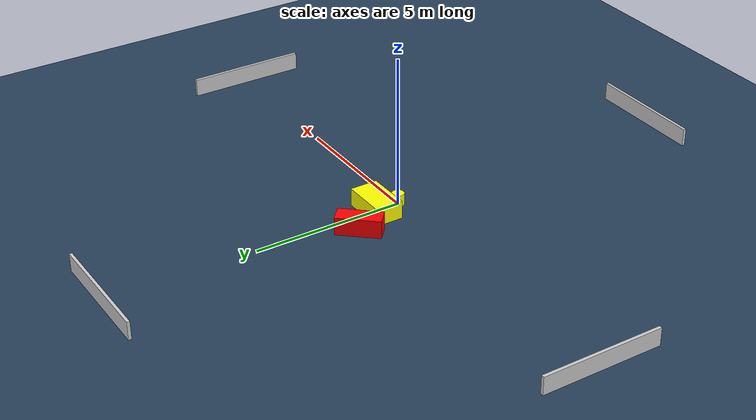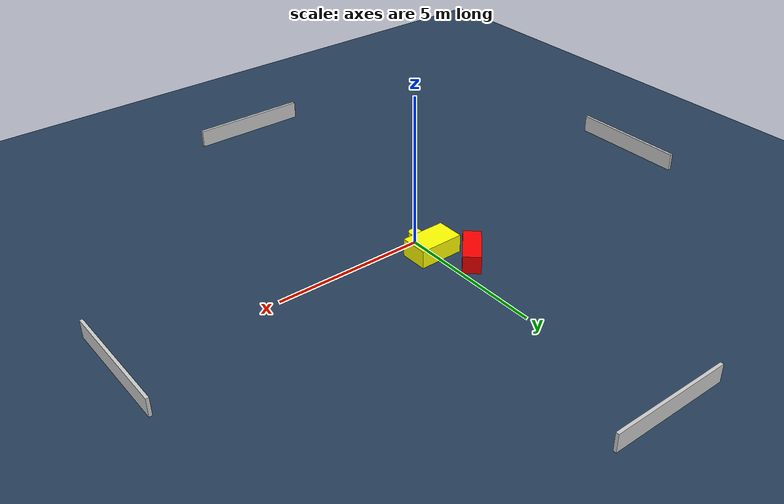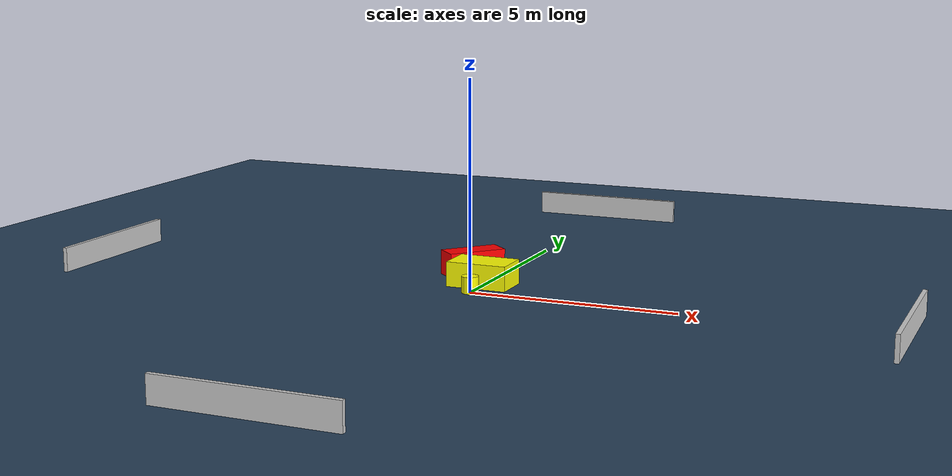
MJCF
<?xml version="1.0" ?>
<mujoco model="generated_environment">
  <option timestep="0.01" integrator="RK4" cone="elliptic"/>
  <default>
    <geom density="1"/>
  </default>
  <asset>
    <texture builtin="gradient" height="3072" name="skybox" rgb1="0.3 0.5 0.7" rgb2="0 0 0" type="skybox" width="512"/>
    <texture builtin="checker" height="300" name="groundplane" rgb1="0.2 0.3 0.4" rgb2="0.1 0.2 0.3" type="2d" width="300"/>
    <material name="groundplane" reflectance="0.2" texrepeat="5 5" texture="groundplane"/>
  </asset>
  <worldbody>
    <light dir="0 0 -1" directional="true" pos="0 0 1.5"/>
    <geom condim="3" friction="0.5 0.005 0.001" material="groundplane" name="floor" pos="0 0 0" size="0 0 0.05" type="plane"/>
    <body name="walls">
      <geom name="wall_1" condim="4" pos="-10.0 0.0 0.3" rgba="0.800000011920929 0.800000011920929 0.800000011920929 1.0" size="0.05 2.0 0.3" type="box"/>
      <geom name="wall_2" condim="4" pos="10.0 0.0 0.3" rgba="0.800000011920929 0.800000011920929 0.800000011920929 1.0" size="0.05 2.0 0.3" type="box"/>
      <geom name="wall_3" condim="4" pos="0.0 -10.0 0.3" rgba="0.800000011920929 0.800000011920929 0.800000011920929 1.0" size="2.0 0.05 0.3" type="box"/>
      <geom name="wall_4" condim="4" pos="0.0 10.0 0.3" rgba="0.800000011920929 0.800000011920929 0.800000011920929 1.0" size="2.0 0.05 0.3" type="box"/>
    </body>
    <body name="robot">
      <joint name="joint_x" type="slide" pos="0 0 0" axis="1 0 0"/>
      <joint name="joint_y" type="slide" pos="0 0 0" axis="0 1 0"/>
      <geom name="robot" type="cylinder" pos="0.0 0.0 0.2" size="0.2 0.2 0.0" mass="5.0" friction="1.0 0.005 0.0001" condim="4" rgba="1.0 1.0 0.0 1.0"/>
    </body>
    <body name="obstacle_1_movable">
      <geom name="obstacle_1_movable" condim="4" pos="-0.023917136686748223 0.8094020516668705 0.3" euler="0 0 0.41911290312763416" friction="0.0 0.005 0.001" rgba="1.0 1.0 0.0 1.0" size="0.7424956735725294 0.46005890192967064 0.3" type="box" mass="0.1"/>
      <joint type="free"/>
    </body>
    <body name="obstacle_2_static">
      <geom name="obstacle_2_static" condim="4" pos="-0.7269319171035529 1.8580185999773762 0.3" euler="0 0 138.43768261986628" friction="0.0 0.005 0.001" rgba="1.0 0.0 0.0 1.0" size="0.288685031244665 0.7244821932513641 0.3" type="box"/>
    </body>
  </worldbody>
  <actuator>
    <motor name="actuator_x" joint="joint_x" gear="1" ctrlrange="-1 1"/>
    <motor name="actuator_y" joint="joint_y" gear="1" ctrlrange="-1 1"/>
  </actuator>
</mujoco>
